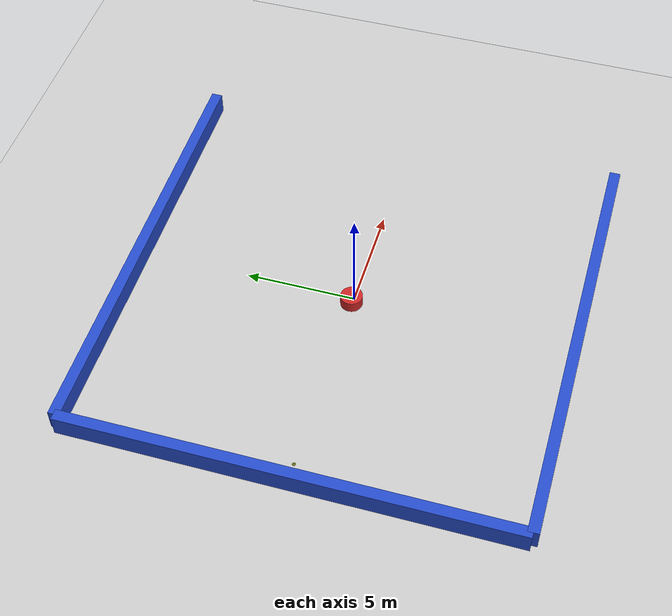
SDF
<sdf version="1.6">
   <world name="default">
      <include>
         <uri>model://ground_plane</uri>
      </include>
      <include>
         <uri>model://sun</uri>
      </include>

    <model name="mediumlibobs_173">
      <static>1</static>
      <pose frame="">-0.225000 0.075000 0.000000 0.000000 0.000000 0.000000</pose>
      <link name="link">
        <inertial>
          <mass>1</mass>
          <inertia>
            <ixx>0.145833</ixx>
            <ixy>0</ixy>
            <ixz>0</ixz>
            <iyy>0.145833</iyy>
            <iyz>0</iyz>
            <izz>0.125</izz>
          </inertia>
        </inertial>
        <collision name="collision">
           <geometry>
            <cylinder>
                <radius>0.5000</radius>
                 <length> 1 </length>
            </cylinder>
          </geometry>
           <surface>
            <contact>
              <ode />
            </contact>
            <bounce />
            <friction>
              <torsional>
                <ode />
              </torsional>
              <ode />
            </friction>
          </surface>
        </collision>
        <visual name="visual">
           <geometry>
            <cylinder>
                <radius>0.5000</radius>
                 <length> 1 </length>
            </cylinder>
          </geometry>
          <material>
            <script>
              <name>Gazebo/Red</name>
              <uri>file://media/materials/scripts/gazebo.material</uri>
            </script>
          </material>
        </visual>
        <self_collide>0</self_collide>
        <kinematic>0</kinematic>
        <gravity>1</gravity>
      </link>
      <plugin name="mediumlibobs_173" filename="mediumlibobs_173.so" />
    </model>

    <model name="hardlibobs_126">
      <static>1</static>
      <pose frame="">-0.225000 0.075000 0.000000 0.000000 0.000000 0.000000</pose>
      <link name="link">
        <inertial>
          <mass>1</mass>
          <inertia>
            <ixx>0.145833</ixx>
            <ixy>0</ixy>
            <ixz>0</ixz>
            <iyy>0.145833</iyy>
            <iyz>0</iyz>
            <izz>0.125</izz>
          </inertia>
        </inertial>
        <collision name="collision">
           <geometry>
            <cylinder>
                <radius>0.5000</radius>
                 <length> 1 </length>
            </cylinder>
          </geometry>
           <surface>
            <contact>
              <ode />
            </contact>
            <bounce />
            <friction>
              <torsional>
                <ode />
              </torsional>
              <ode />
            </friction>
          </surface>
        </collision>
        <visual name="visual">
           <geometry>
            <cylinder>
                <radius>0.5000</radius>
                 <length> 1 </length>
            </cylinder>
          </geometry>
          <material>
            <script>
              <name>Gazebo/Red</name>
              <uri>file://media/materials/scripts/gazebo.material</uri>
            </script>
          </material>
        </visual>
        <self_collide>0</self_collide>
        <kinematic>0</kinematic>
        <gravity>1</gravity>
      </link>
      <plugin name="hardlibobs_126" filename="hardlibobs_126.so" />
    </model>

    <model name="mediumlibobs_88">
      <static>1</static>
      <pose frame="">-0.225000 0.075000 0.000000 0.000000 0.000000 0.000000</pose>
      <link name="link">
        <inertial>
          <mass>1</mass>
          <inertia>
            <ixx>0.145833</ixx>
            <ixy>0</ixy>
            <ixz>0</ixz>
            <iyy>0.145833</iyy>
            <iyz>0</iyz>
            <izz>0.125</izz>
          </inertia>
        </inertial>
        <collision name="collision">
           <geometry>
            <cylinder>
                <radius>0.5000</radius>
                 <length> 1 </length>
            </cylinder>
          </geometry>
           <surface>
            <contact>
              <ode />
            </contact>
            <bounce />
            <friction>
              <torsional>
                <ode />
              </torsional>
              <ode />
            </friction>
          </surface>
        </collision>
        <visual name="visual">
           <geometry>
            <cylinder>
                <radius>0.5000</radius>
                 <length> 1 </length>
            </cylinder>
          </geometry>
          <material>
            <script>
              <name>Gazebo/Red</name>
              <uri>file://media/materials/scripts/gazebo.material</uri>
            </script>
          </material>
        </visual>
        <self_collide>0</self_collide>
        <kinematic>0</kinematic>
        <gravity>1</gravity>
      </link>
      <plugin name="mediumlibobs_88" filename="mediumlibobs_88.so" />
    </model>

    <model name="mediumlibobs_196">
      <static>1</static>
      <pose frame="">-0.225000 0.075000 0.000000 0.000000 0.000000 0.000000</pose>
      <link name="link">
        <inertial>
          <mass>1</mass>
          <inertia>
            <ixx>0.145833</ixx>
            <ixy>0</ixy>
            <ixz>0</ixz>
            <iyy>0.145833</iyy>
            <iyz>0</iyz>
            <izz>0.125</izz>
          </inertia>
        </inertial>
        <collision name="collision">
           <geometry>
            <cylinder>
                <radius>0.5000</radius>
                 <length> 1 </length>
            </cylinder>
          </geometry>
           <surface>
            <contact>
              <ode />
            </contact>
            <bounce />
            <friction>
              <torsional>
                <ode />
              </torsional>
              <ode />
            </friction>
          </surface>
        </collision>
        <visual name="visual">
           <geometry>
            <cylinder>
                <radius>0.5000</radius>
                 <length> 1 </length>
            </cylinder>
          </geometry>
          <material>
            <script>
              <name>Gazebo/Red</name>
              <uri>file://media/materials/scripts/gazebo.material</uri>
            </script>
          </material>
        </visual>
        <self_collide>0</self_collide>
        <kinematic>0</kinematic>
        <gravity>1</gravity>
      </link>
      <plugin name="mediumlibobs_196" filename="mediumlibobs_196.so" />
    </model>

    <model name="hardlibobs_199">
      <static>1</static>
      <pose frame="">-0.225000 0.075000 0.000000 0.000000 0.000000 0.000000</pose>
      <link name="link">
        <inertial>
          <mass>1</mass>
          <inertia>
            <ixx>0.145833</ixx>
            <ixy>0</ixy>
            <ixz>0</ixz>
            <iyy>0.145833</iyy>
            <iyz>0</iyz>
            <izz>0.125</izz>
          </inertia>
        </inertial>
        <collision name="collision">
           <geometry>
            <cylinder>
                <radius>0.5000</radius>
                 <length> 1 </length>
            </cylinder>
          </geometry>
           <surface>
            <contact>
              <ode />
            </contact>
            <bounce />
            <friction>
              <torsional>
                <ode />
              </torsional>
              <ode />
            </friction>
          </surface>
        </collision>
        <visual name="visual">
           <geometry>
            <cylinder>
                <radius>0.5000</radius>
                 <length> 1 </length>
            </cylinder>
          </geometry>
          <material>
            <script>
              <name>Gazebo/Red</name>
              <uri>file://media/materials/scripts/gazebo.material</uri>
            </script>
          </material>
        </visual>
        <self_collide>0</self_collide>
        <kinematic>0</kinematic>
        <gravity>1</gravity>
      </link>
      <plugin name="hardlibobs_199" filename="hardlibobs_199.so" />
    </model>

    <model name="hardlibobs_129">
      <static>1</static>
      <pose frame="">-0.225000 0.075000 0.000000 0.000000 0.000000 0.000000</pose>
      <link name="link">
        <inertial>
          <mass>1</mass>
          <inertia>
            <ixx>0.145833</ixx>
            <ixy>0</ixy>
            <ixz>0</ixz>
            <iyy>0.145833</iyy>
            <iyz>0</iyz>
            <izz>0.125</izz>
          </inertia>
        </inertial>
        <collision name="collision">
           <geometry>
            <cylinder>
                <radius>0.5000</radius>
                 <length> 1 </length>
            </cylinder>
          </geometry>
           <surface>
            <contact>
              <ode />
            </contact>
            <bounce />
            <friction>
              <torsional>
                <ode />
              </torsional>
              <ode />
            </friction>
          </surface>
        </collision>
        <visual name="visual">
           <geometry>
            <cylinder>
                <radius>0.5000</radius>
                 <length> 1 </length>
            </cylinder>
          </geometry>
          <material>
            <script>
              <name>Gazebo/Red</name>
              <uri>file://media/materials/scripts/gazebo.material</uri>
            </script>
          </material>
        </visual>
        <self_collide>0</self_collide>
        <kinematic>0</kinematic>
        <gravity>1</gravity>
      </link>
      <plugin name="hardlibobs_129" filename="hardlibobs_129.so" />
    </model>

    <model name="hardlibobs_98">
      <static>1</static>
      <pose frame="">-0.225000 0.075000 0.000000 0.000000 0.000000 0.000000</pose>
      <link name="link">
        <inertial>
          <mass>1</mass>
          <inertia>
            <ixx>0.145833</ixx>
            <ixy>0</ixy>
            <ixz>0</ixz>
            <iyy>0.145833</iyy>
            <iyz>0</iyz>
            <izz>0.125</izz>
          </inertia>
        </inertial>
        <collision name="collision">
           <geometry>
            <cylinder>
                <radius>0.5000</radius>
                 <length> 1 </length>
            </cylinder>
          </geometry>
           <surface>
            <contact>
              <ode />
            </contact>
            <bounce />
            <friction>
              <torsional>
                <ode />
              </torsional>
              <ode />
            </friction>
          </surface>
        </collision>
        <visual name="visual">
           <geometry>
            <cylinder>
                <radius>0.5000</radius>
                 <length> 1 </length>
            </cylinder>
          </geometry>
          <material>
            <script>
              <name>Gazebo/Red</name>
              <uri>file://media/materials/scripts/gazebo.material</uri>
            </script>
          </material>
        </visual>
        <self_collide>0</self_collide>
        <kinematic>0</kinematic>
        <gravity>1</gravity>
      </link>
      <plugin name="hardlibobs_98" filename="hardlibobs_98.so" />
    </model>

    <model name="mediumlibobs_36">
      <static>1</static>
      <pose frame="">-0.225000 0.075000 0.000000 0.000000 0.000000 0.000000</pose>
      <link name="link">
        <inertial>
          <mass>1</mass>
          <inertia>
            <ixx>0.145833</ixx>
            <ixy>0</ixy>
            <ixz>0</ixz>
            <iyy>0.145833</iyy>
            <iyz>0</iyz>
            <izz>0.125</izz>
          </inertia>
        </inertial>
        <collision name="collision">
           <geometry>
            <cylinder>
                <radius>0.5000</radius>
                 <length> 1 </length>
            </cylinder>
          </geometry>
           <surface>
            <contact>
              <ode />
            </contact>
            <bounce />
            <friction>
              <torsional>
                <ode />
              </torsional>
              <ode />
            </friction>
          </surface>
        </collision>
        <visual name="visual">
           <geometry>
            <cylinder>
                <radius>0.5000</radius>
                 <length> 1 </length>
            </cylinder>
          </geometry>
          <material>
            <script>
              <name>Gazebo/Red</name>
              <uri>file://media/materials/scripts/gazebo.material</uri>
            </script>
          </material>
        </visual>
        <self_collide>0</self_collide>
        <kinematic>0</kinematic>
        <gravity>1</gravity>
      </link>
      <plugin name="mediumlibobs_36" filename="mediumlibobs_36.so" />
    </model>

    <model name="mediumlibobs_146">
      <static>1</static>
      <pose frame="">-0.225000 0.075000 0.000000 0.000000 0.000000 0.000000</pose>
      <link name="link">
        <inertial>
          <mass>1</mass>
          <inertia>
            <ixx>0.145833</ixx>
            <ixy>0</ixy>
            <ixz>0</ixz>
            <iyy>0.145833</iyy>
            <iyz>0</iyz>
            <izz>0.125</izz>
          </inertia>
        </inertial>
        <collision name="collision">
           <geometry>
            <cylinder>
                <radius>0.5000</radius>
                 <length> 1 </length>
            </cylinder>
          </geometry>
           <surface>
            <contact>
              <ode />
            </contact>
            <bounce />
            <friction>
              <torsional>
                <ode />
              </torsional>
              <ode />
            </friction>
          </surface>
        </collision>
        <visual name="visual">
           <geometry>
            <cylinder>
                <radius>0.5000</radius>
                 <length> 1 </length>
            </cylinder>
          </geometry>
          <material>
            <script>
              <name>Gazebo/Red</name>
              <uri>file://media/materials/scripts/gazebo.material</uri>
            </script>
          </material>
        </visual>
        <self_collide>0</self_collide>
        <kinematic>0</kinematic>
        <gravity>1</gravity>
      </link>
      <plugin name="mediumlibobs_146" filename="mediumlibobs_146.so" />
    </model>

    <model name="mediumlibobs_84">
      <static>1</static>
      <pose frame="">-0.225000 0.075000 0.000000 0.000000 0.000000 0.000000</pose>
      <link name="link">
        <inertial>
          <mass>1</mass>
          <inertia>
            <ixx>0.145833</ixx>
            <ixy>0</ixy>
            <ixz>0</ixz>
            <iyy>0.145833</iyy>
            <iyz>0</iyz>
            <izz>0.125</izz>
          </inertia>
        </inertial>
        <collision name="collision">
           <geometry>
            <cylinder>
                <radius>0.5000</radius>
                 <length> 1 </length>
            </cylinder>
          </geometry>
           <surface>
            <contact>
              <ode />
            </contact>
            <bounce />
            <friction>
              <torsional>
                <ode />
              </torsional>
              <ode />
            </friction>
          </surface>
        </collision>
        <visual name="visual">
           <geometry>
            <cylinder>
                <radius>0.5000</radius>
                 <length> 1 </length>
            </cylinder>
          </geometry>
          <material>
            <script>
              <name>Gazebo/Red</name>
              <uri>file://media/materials/scripts/gazebo.material</uri>
            </script>
          </material>
        </visual>
        <self_collide>0</self_collide>
        <kinematic>0</kinematic>
        <gravity>1</gravity>
      </link>
      <plugin name="mediumlibobs_84" filename="mediumlibobs_84.so" />
    </model>

    <model name="mediumlibobs_69">
      <static>1</static>
      <pose frame="">-0.225000 0.075000 0.000000 0.000000 0.000000 0.000000</pose>
      <link name="link">
        <inertial>
          <mass>1</mass>
          <inertia>
            <ixx>0.145833</ixx>
            <ixy>0</ixy>
            <ixz>0</ixz>
            <iyy>0.145833</iyy>
            <iyz>0</iyz>
            <izz>0.125</izz>
          </inertia>
        </inertial>
        <collision name="collision">
           <geometry>
            <cylinder>
                <radius>0.5000</radius>
                 <length> 1 </length>
            </cylinder>
          </geometry>
           <surface>
            <contact>
              <ode />
            </contact>
            <bounce />
            <friction>
              <torsional>
                <ode />
              </torsional>
              <ode />
            </friction>
          </surface>
        </collision>
        <visual name="visual">
           <geometry>
            <cylinder>
                <radius>0.5000</radius>
                 <length> 1 </length>
            </cylinder>
          </geometry>
          <material>
            <script>
              <name>Gazebo/Red</name>
              <uri>file://media/materials/scripts/gazebo.material</uri>
            </script>
          </material>
        </visual>
        <self_collide>0</self_collide>
        <kinematic>0</kinematic>
        <gravity>1</gravity>
      </link>
      <plugin name="mediumlibobs_69" filename="mediumlibobs_69.so" />
    </model>

    <model name="hardlibobs_117">
      <static>1</static>
      <pose frame="">-0.225000 0.075000 0.000000 0.000000 0.000000 0.000000</pose>
      <link name="link">
        <inertial>
          <mass>1</mass>
          <inertia>
            <ixx>0.145833</ixx>
            <ixy>0</ixy>
            <ixz>0</ixz>
            <iyy>0.145833</iyy>
            <iyz>0</iyz>
            <izz>0.125</izz>
          </inertia>
        </inertial>
        <collision name="collision">
           <geometry>
            <cylinder>
                <radius>0.5000</radius>
                 <length> 1 </length>
            </cylinder>
          </geometry>
           <surface>
            <contact>
              <ode />
            </contact>
            <bounce />
            <friction>
              <torsional>
                <ode />
              </torsional>
              <ode />
            </friction>
          </surface>
        </collision>
        <visual name="visual">
           <geometry>
            <cylinder>
                <radius>0.5000</radius>
                 <length> 1 </length>
            </cylinder>
          </geometry>
          <material>
            <script>
              <name>Gazebo/Red</name>
              <uri>file://media/materials/scripts/gazebo.material</uri>
            </script>
          </material>
        </visual>
        <self_collide>0</self_collide>
        <kinematic>0</kinematic>
        <gravity>1</gravity>
      </link>
      <plugin name="hardlibobs_117" filename="hardlibobs_117.so" />
    </model>

    <model name="hardlibobs_137">
      <static>1</static>
      <pose frame="">-0.225000 0.075000 0.000000 0.000000 0.000000 0.000000</pose>
      <link name="link">
        <inertial>
          <mass>1</mass>
          <inertia>
            <ixx>0.145833</ixx>
            <ixy>0</ixy>
            <ixz>0</ixz>
            <iyy>0.145833</iyy>
            <iyz>0</iyz>
            <izz>0.125</izz>
          </inertia>
        </inertial>
        <collision name="collision">
           <geometry>
            <cylinder>
                <radius>0.5000</radius>
                 <length> 1 </length>
            </cylinder>
          </geometry>
           <surface>
            <contact>
              <ode />
            </contact>
            <bounce />
            <friction>
              <torsional>
                <ode />
              </torsional>
              <ode />
            </friction>
          </surface>
        </collision>
        <visual name="visual">
           <geometry>
            <cylinder>
                <radius>0.5000</radius>
                 <length> 1 </length>
            </cylinder>
          </geometry>
          <material>
            <script>
              <name>Gazebo/Red</name>
              <uri>file://media/materials/scripts/gazebo.material</uri>
            </script>
          </material>
        </visual>
        <self_collide>0</self_collide>
        <kinematic>0</kinematic>
        <gravity>1</gravity>
      </link>
      <plugin name="hardlibobs_137" filename="hardlibobs_137.so" />
    </model>

    <model name="mediumlibobs_53">
      <static>1</static>
      <pose frame="">-0.225000 0.075000 0.000000 0.000000 0.000000 0.000000</pose>
      <link name="link">
        <inertial>
          <mass>1</mass>
          <inertia>
            <ixx>0.145833</ixx>
            <ixy>0</ixy>
            <ixz>0</ixz>
            <iyy>0.145833</iyy>
            <iyz>0</iyz>
            <izz>0.125</izz>
          </inertia>
        </inertial>
        <collision name="collision">
           <geometry>
            <cylinder>
                <radius>0.5000</radius>
                 <length> 1 </length>
            </cylinder>
          </geometry>
           <surface>
            <contact>
              <ode />
            </contact>
            <bounce />
            <friction>
              <torsional>
                <ode />
              </torsional>
              <ode />
            </friction>
          </surface>
        </collision>
        <visual name="visual">
           <geometry>
            <cylinder>
                <radius>0.5000</radius>
                 <length> 1 </length>
            </cylinder>
          </geometry>
          <material>
            <script>
              <name>Gazebo/Red</name>
              <uri>file://media/materials/scripts/gazebo.material</uri>
            </script>
          </material>
        </visual>
        <self_collide>0</self_collide>
        <kinematic>0</kinematic>
        <gravity>1</gravity>
      </link>
      <plugin name="mediumlibobs_53" filename="mediumlibobs_53.so" />
    </model>

    <model name="hardlibobs_48">
      <static>1</static>
      <pose frame="">-0.225000 0.075000 0.000000 0.000000 0.000000 0.000000</pose>
      <link name="link">
        <inertial>
          <mass>1</mass>
          <inertia>
            <ixx>0.145833</ixx>
            <ixy>0</ixy>
            <ixz>0</ixz>
            <iyy>0.145833</iyy>
            <iyz>0</iyz>
            <izz>0.125</izz>
          </inertia>
        </inertial>
        <collision name="collision">
           <geometry>
            <cylinder>
                <radius>0.5000</radius>
                 <length> 1 </length>
            </cylinder>
          </geometry>
           <surface>
            <contact>
              <ode />
            </contact>
            <bounce />
            <friction>
              <torsional>
                <ode />
              </torsional>
              <ode />
            </friction>
          </surface>
        </collision>
        <visual name="visual">
           <geometry>
            <cylinder>
                <radius>0.5000</radius>
                 <length> 1 </length>
            </cylinder>
          </geometry>
          <material>
            <script>
              <name>Gazebo/Red</name>
              <uri>file://media/materials/scripts/gazebo.material</uri>
            </script>
          </material>
        </visual>
        <self_collide>0</self_collide>
        <kinematic>0</kinematic>
        <gravity>1</gravity>
      </link>
      <plugin name="hardlibobs_48" filename="hardlibobs_48.so" />
    </model>

    <model name="mediumlibobs_141">
      <static>1</static>
      <pose frame="">-0.225000 0.075000 0.000000 0.000000 0.000000 0.000000</pose>
      <link name="link">
        <inertial>
          <mass>1</mass>
          <inertia>
            <ixx>0.145833</ixx>
            <ixy>0</ixy>
            <ixz>0</ixz>
            <iyy>0.145833</iyy>
            <iyz>0</iyz>
            <izz>0.125</izz>
          </inertia>
        </inertial>
        <collision name="collision">
           <geometry>
            <cylinder>
                <radius>0.5000</radius>
                 <length> 1 </length>
            </cylinder>
          </geometry>
           <surface>
            <contact>
              <ode />
            </contact>
            <bounce />
            <friction>
              <torsional>
                <ode />
              </torsional>
              <ode />
            </friction>
          </surface>
        </collision>
        <visual name="visual">
           <geometry>
            <cylinder>
                <radius>0.5000</radius>
                 <length> 1 </length>
            </cylinder>
          </geometry>
          <material>
            <script>
              <name>Gazebo/Red</name>
              <uri>file://media/materials/scripts/gazebo.material</uri>
            </script>
          </material>
        </visual>
        <self_collide>0</self_collide>
        <kinematic>0</kinematic>
        <gravity>1</gravity>
      </link>
      <plugin name="mediumlibobs_141" filename="mediumlibobs_141.so" />
    </model>

    <model name="mediumlibobs_194">
      <static>1</static>
      <pose frame="">-0.225000 0.075000 0.000000 0.000000 0.000000 0.000000</pose>
      <link name="link">
        <inertial>
          <mass>1</mass>
          <inertia>
            <ixx>0.145833</ixx>
            <ixy>0</ixy>
            <ixz>0</ixz>
            <iyy>0.145833</iyy>
            <iyz>0</iyz>
            <izz>0.125</izz>
          </inertia>
        </inertial>
        <collision name="collision">
           <geometry>
            <cylinder>
                <radius>0.5000</radius>
                 <length> 1 </length>
            </cylinder>
          </geometry>
           <surface>
            <contact>
              <ode />
            </contact>
            <bounce />
            <friction>
              <torsional>
                <ode />
              </torsional>
              <ode />
            </friction>
          </surface>
        </collision>
        <visual name="visual">
           <geometry>
            <cylinder>
                <radius>0.5000</radius>
                 <length> 1 </length>
            </cylinder>
          </geometry>
          <material>
            <script>
              <name>Gazebo/Red</name>
              <uri>file://media/materials/scripts/gazebo.material</uri>
            </script>
          </material>
        </visual>
        <self_collide>0</self_collide>
        <kinematic>0</kinematic>
        <gravity>1</gravity>
      </link>
      <plugin name="mediumlibobs_194" filename="mediumlibobs_194.so" />
    </model>

    <model name="mediumlibobs_55">
      <static>1</static>
      <pose frame="">-0.225000 0.075000 0.000000 0.000000 0.000000 0.000000</pose>
      <link name="link">
        <inertial>
          <mass>1</mass>
          <inertia>
            <ixx>0.145833</ixx>
            <ixy>0</ixy>
            <ixz>0</ixz>
            <iyy>0.145833</iyy>
            <iyz>0</iyz>
            <izz>0.125</izz>
          </inertia>
        </inertial>
        <collision name="collision">
           <geometry>
            <cylinder>
                <radius>0.5000</radius>
                 <length> 1 </length>
            </cylinder>
          </geometry>
           <surface>
            <contact>
              <ode />
            </contact>
            <bounce />
            <friction>
              <torsional>
                <ode />
              </torsional>
              <ode />
            </friction>
          </surface>
        </collision>
        <visual name="visual">
           <geometry>
            <cylinder>
                <radius>0.5000</radius>
                 <length> 1 </length>
            </cylinder>
          </geometry>
          <material>
            <script>
              <name>Gazebo/Red</name>
              <uri>file://media/materials/scripts/gazebo.material</uri>
            </script>
          </material>
        </visual>
        <self_collide>0</self_collide>
        <kinematic>0</kinematic>
        <gravity>1</gravity>
      </link>
      <plugin name="mediumlibobs_55" filename="mediumlibobs_55.so" />
    </model>

      <model name="back_wall">
      <static>1</static>\   <pose frame="">-10 0 .5 0 0 0</pose>        <link name="box_link">

	<collision name="collision">
            <geometry>
              <box>
                <size>.5 20 1</size>
              </box>
            </geometry>
           <surface>
            <contact>
              <ode />
            </contact>
            <bounce />
            <friction>
              <torsional>
                <ode />
              </torsional>
              <ode />
            </friction>
          </surface>
        </collision>

          <visual name="visual">
            <geometry>
              <box>
                <size>.5 20 1</size>
              </box>
            </geometry>
          <material>
                 <script>
                     <name>Gazebo/Blue</name>
                         <uri>file://media/materials/scripts/gazebo.material</uri>
                         </script>
                     </material>
          </visual>
        </link>
      </model>
      <model name="top_wall">
      <static>1</static>
       <pose frame="">0 10 .5 0 0 0</pose>        <link name="box_link">

	<collision name="collision">
           <geometry>
              <box>
                <size>20 .5 1</size>
              </box>
            </geometry>
           <surface>
            <contact>
              <ode />
            </contact>
            <bounce />
            <friction>
              <torsional>
                <ode />
              </torsional>
              <ode />
            </friction>
          </surface>
        </collision>
          <visual name="visual">
            <geometry>
              <box>
                <size>20 .5 1</size>
              </box>
            </geometry>
          <material>
                 <script>
                     <name>Gazebo/Blue</name>
                         <uri>file://media/materials/scripts/gazebo.material</uri>
                         </script>
                     </material>
          </visual>
        </link>
      </model>
      <model name="bottom_wall">
      <static>1</static>
       <pose frame="">0 -10 .5 0 0 0</pose>        <link name="box_link">
	<collision name="collision">
            <geometry>
              <box>
                <size>20 .5 1</size>
              </box>
            </geometry>
           <surface>
            <contact>
              <ode />
            </contact>
            <bounce />
            <friction>
              <torsional>
                <ode />
              </torsional>
              <ode />
            </friction>
          </surface>
        </collision>
          <visual name="visual">
            <geometry>
              <box>
                <size>20 .5 1</size>
              </box>
            </geometry>
          <material>
                 <script>
                     <name>Gazebo/Blue</name>
                         <uri>file://media/materials/scripts/gazebo.material</uri>
                         </script>
                     </material>
          </visual>
        </link>
      </model>
   <model name="goal"><static>1</static><pose frame="">-9.00000 0.000000 0.000000 0.000000 0.000000 0.000000</pose><link name="link"><inertial><mass>1</mass><inertia><ixx>0.145833</ixx><ixy>0</ixy><ixz>0</ixz><iyy>0.145833</iyy><iyz>0</iyz><izz>0.125</izz></inertia></inertial><collision name="collision"><geometry><cylinder><radius>0.075000</radius><length>1</length></cylinder></geometry><max_contacts>10</max_contacts><surface><contact><ode /></contact><bounce /><friction><torsional><ode /></torsional><ode /></friction></surface></collision><visual name="visual"><geometry><cylinder><radius>0.075000</radius><length>0.001</length></cylinder></geometry><material><ambient>0 1 0 1</ambient><diffuse>0.4 0.4 0.1 1</diffuse></material><material><script><name>Gazebo/Grey</name><uri>file://media/materials/scripts/gazebo.material</uri></script></material></visual><self_collide>0</self_collide><kinematic>0</kinematic><gravity>0</gravity></link></model></world>
</sdf>
